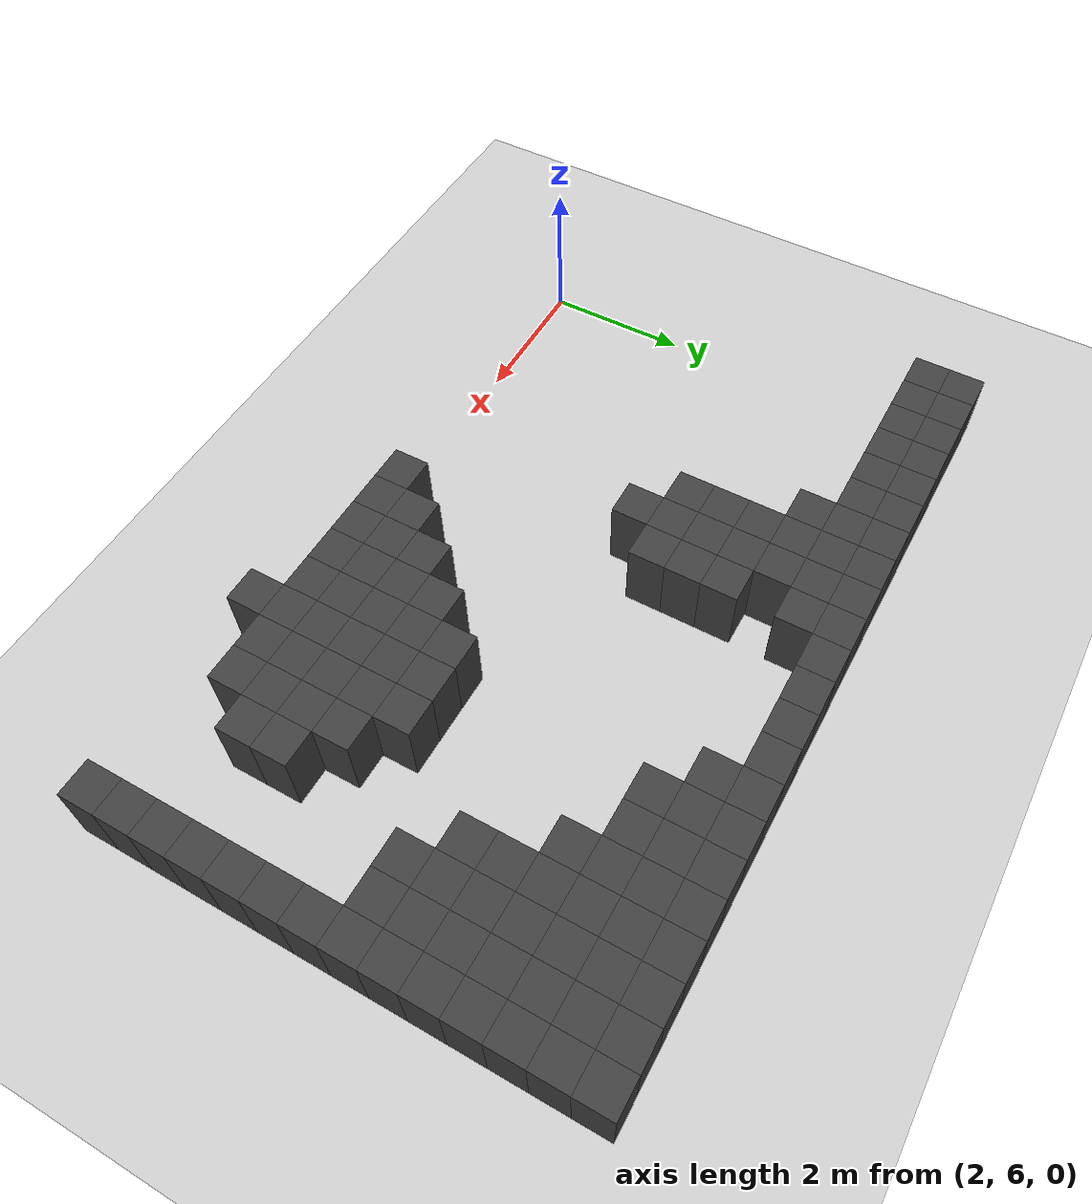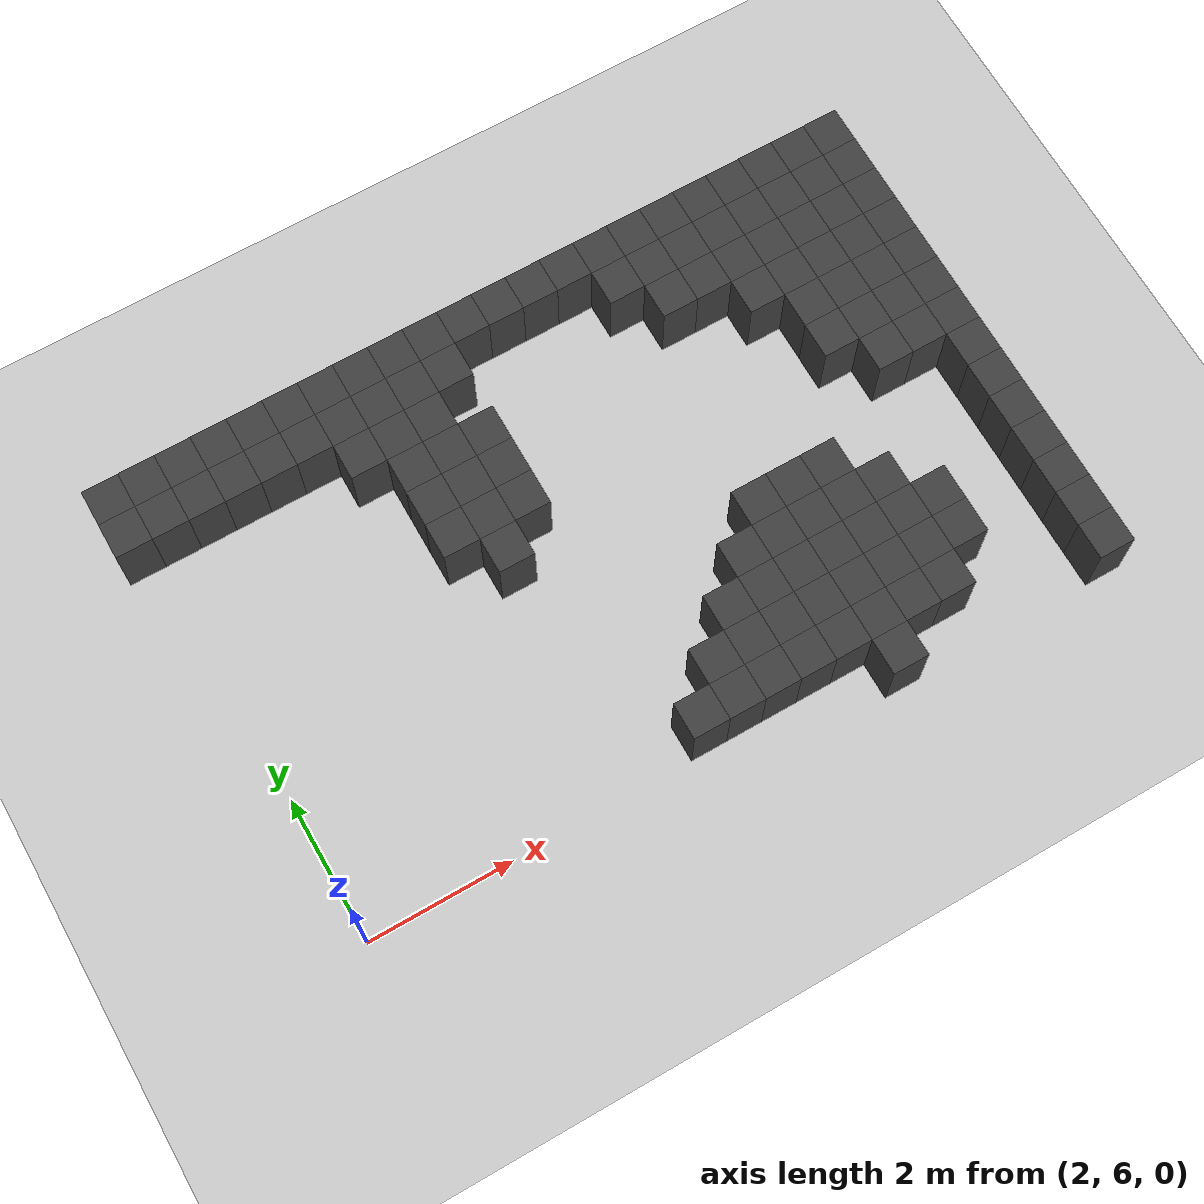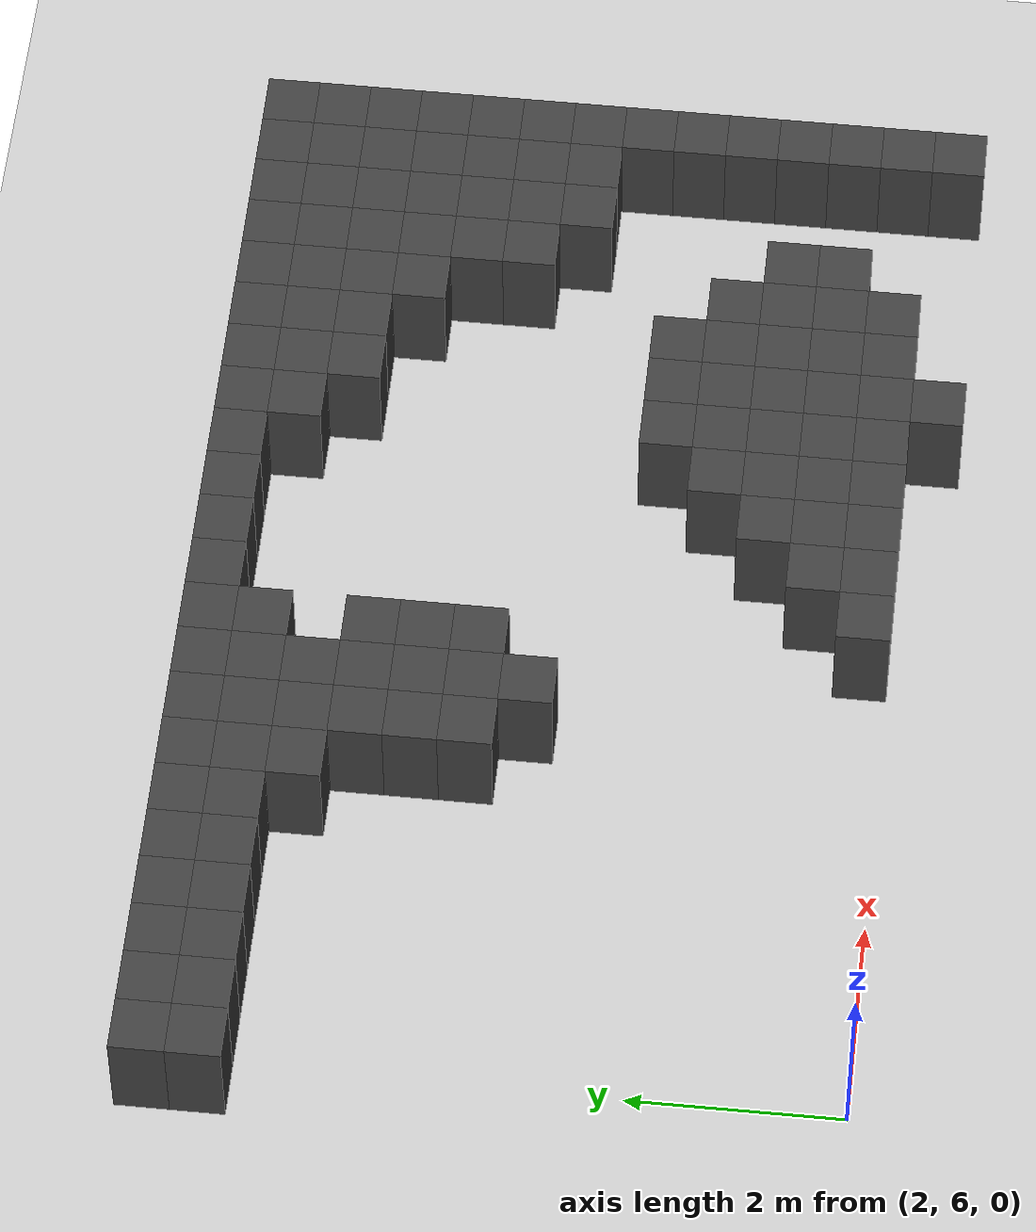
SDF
<sdf version="1.7">
 <world name="map_8829">
  <model name="ground_plane">
   <static>true</static>
   <link name="link">
    <collision name="collision">
     <geometry><plane><normal>0 0 1</normal><size>200 200</size></plane></geometry>
    </collision>
    <visual name="visual">
     <geometry><plane><normal>0 0 1</normal><size>200 200</size></plane></geometry>
     <material><ambient>0.8 0.8 0.8 1</ambient><diffuse>0.8 0.8 0.8 1</diffuse></material>
    </visual>
   </link>
  </model>
  <model name="maze_environment">
   <static>true</static>
   <link name="wall_28">
    <pose>1.750 12.250 0.500 0 0 0</pose>
    <collision name="col"><geometry><box><size>0.5 0.5 1.0</size></box></geometry></collision>
    <visual name="vis">
     <geometry><box><size>0.5 0.5 1.0</size></box></geometry>
     <material><ambient>0.15 0.15 0.15 1</ambient><diffuse>0.25 0.25 0.25 1</diffuse></material>
    </visual>
   </link>
   <link name="wall_29">
    <pose>2.250 12.250 0.500 0 0 0</pose>
    <collision name="col"><geometry><box><size>0.5 0.5 1.0</size></box></geometry></collision>
    <visual name="vis">
     <geometry><box><size>0.5 0.5 1.0</size></box></geometry>
     <material><ambient>0.15 0.15 0.15 1</ambient><diffuse>0.25 0.25 0.25 1</diffuse></material>
    </visual>
   </link>
   <link name="wall_30">
    <pose>2.750 12.250 0.500 0 0 0</pose>
    <collision name="col"><geometry><box><size>0.5 0.5 1.0</size></box></geometry></collision>
    <visual name="vis">
     <geometry><box><size>0.5 0.5 1.0</size></box></geometry>
     <material><ambient>0.15 0.15 0.15 1</ambient><diffuse>0.25 0.25 0.25 1</diffuse></material>
    </visual>
   </link>
   <link name="wall_31">
    <pose>3.250 12.250 0.500 0 0 0</pose>
    <collision name="col"><geometry><box><size>0.5 0.5 1.0</size></box></geometry></collision>
    <visual name="vis">
     <geometry><box><size>0.5 0.5 1.0</size></box></geometry>
     <material><ambient>0.15 0.15 0.15 1</ambient><diffuse>0.25 0.25 0.25 1</diffuse></material>
    </visual>
   </link>
   <link name="wall_32">
    <pose>3.750 12.250 0.500 0 0 0</pose>
    <collision name="col"><geometry><box><size>0.5 0.5 1.0</size></box></geometry></collision>
    <visual name="vis">
     <geometry><box><size>0.5 0.5 1.0</size></box></geometry>
     <material><ambient>0.15 0.15 0.15 1</ambient><diffuse>0.25 0.25 0.25 1</diffuse></material>
    </visual>
   </link>
   <link name="wall_33">
    <pose>4.250 12.250 0.500 0 0 0</pose>
    <collision name="col"><geometry><box><size>0.5 0.5 1.0</size></box></geometry></collision>
    <visual name="vis">
     <geometry><box><size>0.5 0.5 1.0</size></box></geometry>
     <material><ambient>0.15 0.15 0.15 1</ambient><diffuse>0.25 0.25 0.25 1</diffuse></material>
    </visual>
   </link>
   <link name="wall_34">
    <pose>4.750 12.250 0.500 0 0 0</pose>
    <collision name="col"><geometry><box><size>0.5 0.5 1.0</size></box></geometry></collision>
    <visual name="vis">
     <geometry><box><size>0.5 0.5 1.0</size></box></geometry>
     <material><ambient>0.15 0.15 0.15 1</ambient><diffuse>0.25 0.25 0.25 1</diffuse></material>
    </visual>
   </link>
   <link name="wall_35">
    <pose>5.250 12.250 0.500 0 0 0</pose>
    <collision name="col"><geometry><box><size>0.5 0.5 1.0</size></box></geometry></collision>
    <visual name="vis">
     <geometry><box><size>0.5 0.5 1.0</size></box></geometry>
     <material><ambient>0.15 0.15 0.15 1</ambient><diffuse>0.25 0.25 0.25 1</diffuse></material>
    </visual>
   </link>
   <link name="wall_36">
    <pose>5.750 12.250 0.500 0 0 0</pose>
    <collision name="col"><geometry><box><size>0.5 0.5 1.0</size></box></geometry></collision>
    <visual name="vis">
     <geometry><box><size>0.5 0.5 1.0</size></box></geometry>
     <material><ambient>0.15 0.15 0.15 1</ambient><diffuse>0.25 0.25 0.25 1</diffuse></material>
    </visual>
   </link>
   <link name="wall_37">
    <pose>6.250 12.250 0.500 0 0 0</pose>
    <collision name="col"><geometry><box><size>0.5 0.5 1.0</size></box></geometry></collision>
    <visual name="vis">
     <geometry><box><size>0.5 0.5 1.0</size></box></geometry>
     <material><ambient>0.15 0.15 0.15 1</ambient><diffuse>0.25 0.25 0.25 1</diffuse></material>
    </visual>
   </link>
   <link name="wall_38">
    <pose>6.750 12.250 0.500 0 0 0</pose>
    <collision name="col"><geometry><box><size>0.5 0.5 1.0</size></box></geometry></collision>
    <visual name="vis">
     <geometry><box><size>0.5 0.5 1.0</size></box></geometry>
     <material><ambient>0.15 0.15 0.15 1</ambient><diffuse>0.25 0.25 0.25 1</diffuse></material>
    </visual>
   </link>
   <link name="wall_39">
    <pose>7.250 12.250 0.500 0 0 0</pose>
    <collision name="col"><geometry><box><size>0.5 0.5 1.0</size></box></geometry></collision>
    <visual name="vis">
     <geometry><box><size>0.5 0.5 1.0</size></box></geometry>
     <material><ambient>0.15 0.15 0.15 1</ambient><diffuse>0.25 0.25 0.25 1</diffuse></material>
    </visual>
   </link>
   <link name="wall_40">
    <pose>7.750 12.250 0.500 0 0 0</pose>
    <collision name="col"><geometry><box><size>0.5 0.5 1.0</size></box></geometry></collision>
    <visual name="vis">
     <geometry><box><size>0.5 0.5 1.0</size></box></geometry>
     <material><ambient>0.15 0.15 0.15 1</ambient><diffuse>0.25 0.25 0.25 1</diffuse></material>
    </visual>
   </link>
   <link name="wall_41">
    <pose>8.250 12.250 0.500 0 0 0</pose>
    <collision name="col"><geometry><box><size>0.5 0.5 1.0</size></box></geometry></collision>
    <visual name="vis">
     <geometry><box><size>0.5 0.5 1.0</size></box></geometry>
     <material><ambient>0.15 0.15 0.15 1</ambient><diffuse>0.25 0.25 0.25 1</diffuse></material>
    </visual>
   </link>
   <link name="wall_42">
    <pose>8.750 12.250 0.500 0 0 0</pose>
    <collision name="col"><geometry><box><size>0.5 0.5 1.0</size></box></geometry></collision>
    <visual name="vis">
     <geometry><box><size>0.5 0.5 1.0</size></box></geometry>
     <material><ambient>0.15 0.15 0.15 1</ambient><diffuse>0.25 0.25 0.25 1</diffuse></material>
    </visual>
   </link>
   <link name="wall_43">
    <pose>9.250 12.250 0.500 0 0 0</pose>
    <collision name="col"><geometry><box><size>0.5 0.5 1.0</size></box></geometry></collision>
    <visual name="vis">
     <geometry><box><size>0.5 0.5 1.0</size></box></geometry>
     <material><ambient>0.15 0.15 0.15 1</ambient><diffuse>0.25 0.25 0.25 1</diffuse></material>
    </visual>
   </link>
   <link name="wall_44">
    <pose>9.750 12.250 0.500 0 0 0</pose>
    <collision name="col"><geometry><box><size>0.5 0.5 1.0</size></box></geometry></collision>
    <visual name="vis">
     <geometry><box><size>0.5 0.5 1.0</size></box></geometry>
     <material><ambient>0.15 0.15 0.15 1</ambient><diffuse>0.25 0.25 0.25 1</diffuse></material>
    </visual>
   </link>
   <link name="wall_45">
    <pose>10.250 12.250 0.500 0 0 0</pose>
    <collision name="col"><geometry><box><size>0.5 0.5 1.0</size></box></geometry></collision>
    <visual name="vis">
     <geometry><box><size>0.5 0.5 1.0</size></box></geometry>
     <material><ambient>0.15 0.15 0.15 1</ambient><diffuse>0.25 0.25 0.25 1</diffuse></material>
    </visual>
   </link>
   <link name="wall_46">
    <pose>10.750 12.250 0.500 0 0 0</pose>
    <collision name="col"><geometry><box><size>0.5 0.5 1.0</size></box></geometry></collision>
    <visual name="vis">
     <geometry><box><size>0.5 0.5 1.0</size></box></geometry>
     <material><ambient>0.15 0.15 0.15 1</ambient><diffuse>0.25 0.25 0.25 1</diffuse></material>
    </visual>
   </link>
   <link name="wall_47">
    <pose>11.250 12.250 0.500 0 0 0</pose>
    <collision name="col"><geometry><box><size>0.5 0.5 1.0</size></box></geometry></collision>
    <visual name="vis">
     <geometry><box><size>0.5 0.5 1.0</size></box></geometry>
     <material><ambient>0.15 0.15 0.15 1</ambient><diffuse>0.25 0.25 0.25 1</diffuse></material>
    </visual>
   </link>
   <link name="wall_48">
    <pose>11.750 12.250 0.500 0 0 0</pose>
    <collision name="col"><geometry><box><size>0.5 0.5 1.0</size></box></geometry></collision>
    <visual name="vis">
     <geometry><box><size>0.5 0.5 1.0</size></box></geometry>
     <material><ambient>0.15 0.15 0.15 1</ambient><diffuse>0.25 0.25 0.25 1</diffuse></material>
    </visual>
   </link>
   <link name="wall_49">
    <pose>12.250 12.250 0.500 0 0 0</pose>
    <collision name="col"><geometry><box><size>0.5 0.5 1.0</size></box></geometry></collision>
    <visual name="vis">
     <geometry><box><size>0.5 0.5 1.0</size></box></geometry>
     <material><ambient>0.15 0.15 0.15 1</ambient><diffuse>0.25 0.25 0.25 1</diffuse></material>
    </visual>
   </link>
   <link name="wall_67">
    <pose>1.750 11.750 0.500 0 0 0</pose>
    <collision name="col"><geometry><box><size>0.5 0.5 1.0</size></box></geometry></collision>
    <visual name="vis">
     <geometry><box><size>0.5 0.5 1.0</size></box></geometry>
     <material><ambient>0.15 0.15 0.15 1</ambient><diffuse>0.25 0.25 0.25 1</diffuse></material>
    </visual>
   </link>
   <link name="wall_68">
    <pose>2.250 11.750 0.500 0 0 0</pose>
    <collision name="col"><geometry><box><size>0.5 0.5 1.0</size></box></geometry></collision>
    <visual name="vis">
     <geometry><box><size>0.5 0.5 1.0</size></box></geometry>
     <material><ambient>0.15 0.15 0.15 1</ambient><diffuse>0.25 0.25 0.25 1</diffuse></material>
    </visual>
   </link>
   <link name="wall_69">
    <pose>2.750 11.750 0.500 0 0 0</pose>
    <collision name="col"><geometry><box><size>0.5 0.5 1.0</size></box></geometry></collision>
    <visual name="vis">
     <geometry><box><size>0.5 0.5 1.0</size></box></geometry>
     <material><ambient>0.15 0.15 0.15 1</ambient><diffuse>0.25 0.25 0.25 1</diffuse></material>
    </visual>
   </link>
   <link name="wall_70">
    <pose>3.250 11.750 0.500 0 0 0</pose>
    <collision name="col"><geometry><box><size>0.5 0.5 1.0</size></box></geometry></collision>
    <visual name="vis">
     <geometry><box><size>0.5 0.5 1.0</size></box></geometry>
     <material><ambient>0.15 0.15 0.15 1</ambient><diffuse>0.25 0.25 0.25 1</diffuse></material>
    </visual>
   </link>
   <link name="wall_71">
    <pose>3.750 11.750 0.500 0 0 0</pose>
    <collision name="col"><geometry><box><size>0.5 0.5 1.0</size></box></geometry></collision>
    <visual name="vis">
     <geometry><box><size>0.5 0.5 1.0</size></box></geometry>
     <material><ambient>0.15 0.15 0.15 1</ambient><diffuse>0.25 0.25 0.25 1</diffuse></material>
    </visual>
   </link>
   <link name="wall_72">
    <pose>4.250 11.750 0.500 0 0 0</pose>
    <collision name="col"><geometry><box><size>0.5 0.5 1.0</size></box></geometry></collision>
    <visual name="vis">
     <geometry><box><size>0.5 0.5 1.0</size></box></geometry>
     <material><ambient>0.15 0.15 0.15 1</ambient><diffuse>0.25 0.25 0.25 1</diffuse></material>
    </visual>
   </link>
   <link name="wall_73">
    <pose>4.750 11.750 0.500 0 0 0</pose>
    <collision name="col"><geometry><box><size>0.5 0.5 1.0</size></box></geometry></collision>
    <visual name="vis">
     <geometry><box><size>0.5 0.5 1.0</size></box></geometry>
     <material><ambient>0.15 0.15 0.15 1</ambient><diffuse>0.25 0.25 0.25 1</diffuse></material>
    </visual>
   </link>
   <link name="wall_74">
    <pose>5.250 11.750 0.500 0 0 0</pose>
    <collision name="col"><geometry><box><size>0.5 0.5 1.0</size></box></geometry></collision>
    <visual name="vis">
     <geometry><box><size>0.5 0.5 1.0</size></box></geometry>
     <material><ambient>0.15 0.15 0.15 1</ambient><diffuse>0.25 0.25 0.25 1</diffuse></material>
    </visual>
   </link>
   <link name="wall_75">
    <pose>5.750 11.750 0.500 0 0 0</pose>
    <collision name="col"><geometry><box><size>0.5 0.5 1.0</size></box></geometry></collision>
    <visual name="vis">
     <geometry><box><size>0.5 0.5 1.0</size></box></geometry>
     <material><ambient>0.15 0.15 0.15 1</ambient><diffuse>0.25 0.25 0.25 1</diffuse></material>
    </visual>
   </link>
   <link name="wall_76">
    <pose>6.250 11.750 0.500 0 0 0</pose>
    <collision name="col"><geometry><box><size>0.5 0.5 1.0</size></box></geometry></collision>
    <visual name="vis">
     <geometry><box><size>0.5 0.5 1.0</size></box></geometry>
     <material><ambient>0.15 0.15 0.15 1</ambient><diffuse>0.25 0.25 0.25 1</diffuse></material>
    </visual>
   </link>
   <link name="wall_77">
    <pose>8.750 11.750 0.500 0 0 0</pose>
    <collision name="col"><geometry><box><size>0.5 0.5 1.0</size></box></geometry></collision>
    <visual name="vis">
     <geometry><box><size>0.5 0.5 1.0</size></box></geometry>
     <material><ambient>0.15 0.15 0.15 1</ambient><diffuse>0.25 0.25 0.25 1</diffuse></material>
    </visual>
   </link>
   <link name="wall_78">
    <pose>9.250 11.750 0.500 0 0 0</pose>
    <collision name="col"><geometry><box><size>0.5 0.5 1.0</size></box></geometry></collision>
    <visual name="vis">
     <geometry><box><size>0.5 0.5 1.0</size></box></geometry>
     <material><ambient>0.15 0.15 0.15 1</ambient><diffuse>0.25 0.25 0.25 1</diffuse></material>
    </visual>
   </link>
   <link name="wall_79">
    <pose>9.750 11.750 0.500 0 0 0</pose>
    <collision name="col"><geometry><box><size>0.5 0.5 1.0</size></box></geometry></collision>
    <visual name="vis">
     <geometry><box><size>0.5 0.5 1.0</size></box></geometry>
     <material><ambient>0.15 0.15 0.15 1</ambient><diffuse>0.25 0.25 0.25 1</diffuse></material>
    </visual>
   </link>
   <link name="wall_80">
    <pose>10.250 11.750 0.500 0 0 0</pose>
    <collision name="col"><geometry><box><size>0.5 0.5 1.0</size></box></geometry></collision>
    <visual name="vis">
     <geometry><box><size>0.5 0.5 1.0</size></box></geometry>
     <material><ambient>0.15 0.15 0.15 1</ambient><diffuse>0.25 0.25 0.25 1</diffuse></material>
    </visual>
   </link>
   <link name="wall_81">
    <pose>10.750 11.750 0.500 0 0 0</pose>
    <collision name="col"><geometry><box><size>0.5 0.5 1.0</size></box></geometry></collision>
    <visual name="vis">
     <geometry><box><size>0.5 0.5 1.0</size></box></geometry>
     <material><ambient>0.15 0.15 0.15 1</ambient><diffuse>0.25 0.25 0.25 1</diffuse></material>
    </visual>
   </link>
   <link name="wall_82">
    <pose>11.250 11.750 0.500 0 0 0</pose>
    <collision name="col"><geometry><box><size>0.5 0.5 1.0</size></box></geometry></collision>
    <visual name="vis">
     <geometry><box><size>0.5 0.5 1.0</size></box></geometry>
     <material><ambient>0.15 0.15 0.15 1</ambient><diffuse>0.25 0.25 0.25 1</diffuse></material>
    </visual>
   </link>
   <link name="wall_83">
    <pose>11.750 11.750 0.500 0 0 0</pose>
    <collision name="col"><geometry><box><size>0.5 0.5 1.0</size></box></geometry></collision>
    <visual name="vis">
     <geometry><box><size>0.5 0.5 1.0</size></box></geometry>
     <material><ambient>0.15 0.15 0.15 1</ambient><diffuse>0.25 0.25 0.25 1</diffuse></material>
    </visual>
   </link>
   <link name="wall_84">
    <pose>12.250 11.750 0.500 0 0 0</pose>
    <collision name="col"><geometry><box><size>0.5 0.5 1.0</size></box></geometry></collision>
    <visual name="vis">
     <geometry><box><size>0.5 0.5 1.0</size></box></geometry>
     <material><ambient>0.15 0.15 0.15 1</ambient><diffuse>0.25 0.25 0.25 1</diffuse></material>
    </visual>
   </link>
   <link name="wall_95">
    <pose>4.750 11.250 0.500 0 0 0</pose>
    <collision name="col"><geometry><box><size>0.5 0.5 1.0</size></box></geometry></collision>
    <visual name="vis">
     <geometry><box><size>0.5 0.5 1.0</size></box></geometry>
     <material><ambient>0.15 0.15 0.15 1</ambient><diffuse>0.25 0.25 0.25 1</diffuse></material>
    </visual>
   </link>
   <link name="wall_96">
    <pose>5.250 11.250 0.500 0 0 0</pose>
    <collision name="col"><geometry><box><size>0.5 0.5 1.0</size></box></geometry></collision>
    <visual name="vis">
     <geometry><box><size>0.5 0.5 1.0</size></box></geometry>
     <material><ambient>0.15 0.15 0.15 1</ambient><diffuse>0.25 0.25 0.25 1</diffuse></material>
    </visual>
   </link>
   <link name="wall_97">
    <pose>5.750 11.250 0.500 0 0 0</pose>
    <collision name="col"><geometry><box><size>0.5 0.5 1.0</size></box></geometry></collision>
    <visual name="vis">
     <geometry><box><size>0.5 0.5 1.0</size></box></geometry>
     <material><ambient>0.15 0.15 0.15 1</ambient><diffuse>0.25 0.25 0.25 1</diffuse></material>
    </visual>
   </link>
   <link name="wall_98">
    <pose>9.250 11.250 0.500 0 0 0</pose>
    <collision name="col"><geometry><box><size>0.5 0.5 1.0</size></box></geometry></collision>
    <visual name="vis">
     <geometry><box><size>0.5 0.5 1.0</size></box></geometry>
     <material><ambient>0.15 0.15 0.15 1</ambient><diffuse>0.25 0.25 0.25 1</diffuse></material>
    </visual>
   </link>
   <link name="wall_99">
    <pose>9.750 11.250 0.500 0 0 0</pose>
    <collision name="col"><geometry><box><size>0.5 0.5 1.0</size></box></geometry></collision>
    <visual name="vis">
     <geometry><box><size>0.5 0.5 1.0</size></box></geometry>
     <material><ambient>0.15 0.15 0.15 1</ambient><diffuse>0.25 0.25 0.25 1</diffuse></material>
    </visual>
   </link>
   <link name="wall_100">
    <pose>10.250 11.250 0.500 0 0 0</pose>
    <collision name="col"><geometry><box><size>0.5 0.5 1.0</size></box></geometry></collision>
    <visual name="vis">
     <geometry><box><size>0.5 0.5 1.0</size></box></geometry>
     <material><ambient>0.15 0.15 0.15 1</ambient><diffuse>0.25 0.25 0.25 1</diffuse></material>
    </visual>
   </link>
   <link name="wall_101">
    <pose>10.750 11.250 0.500 0 0 0</pose>
    <collision name="col"><geometry><box><size>0.5 0.5 1.0</size></box></geometry></collision>
    <visual name="vis">
     <geometry><box><size>0.5 0.5 1.0</size></box></geometry>
     <material><ambient>0.15 0.15 0.15 1</ambient><diffuse>0.25 0.25 0.25 1</diffuse></material>
    </visual>
   </link>
   <link name="wall_102">
    <pose>11.250 11.250 0.500 0 0 0</pose>
    <collision name="col"><geometry><box><size>0.5 0.5 1.0</size></box></geometry></collision>
    <visual name="vis">
     <geometry><box><size>0.5 0.5 1.0</size></box></geometry>
     <material><ambient>0.15 0.15 0.15 1</ambient><diffuse>0.25 0.25 0.25 1</diffuse></material>
    </visual>
   </link>
   <link name="wall_103">
    <pose>11.750 11.250 0.500 0 0 0</pose>
    <collision name="col"><geometry><box><size>0.5 0.5 1.0</size></box></geometry></collision>
    <visual name="vis">
     <geometry><box><size>0.5 0.5 1.0</size></box></geometry>
     <material><ambient>0.15 0.15 0.15 1</ambient><diffuse>0.25 0.25 0.25 1</diffuse></material>
    </visual>
   </link>
   <link name="wall_104">
    <pose>12.250 11.250 0.500 0 0 0</pose>
    <collision name="col"><geometry><box><size>0.5 0.5 1.0</size></box></geometry></collision>
    <visual name="vis">
     <geometry><box><size>0.5 0.5 1.0</size></box></geometry>
     <material><ambient>0.15 0.15 0.15 1</ambient><diffuse>0.25 0.25 0.25 1</diffuse></material>
    </visual>
   </link>
   <link name="wall_114">
    <pose>5.250 10.750 0.500 0 0 0</pose>
    <collision name="col"><geometry><box><size>0.5 0.5 1.0</size></box></geometry></collision>
    <visual name="vis">
     <geometry><box><size>0.5 0.5 1.0</size></box></geometry>
     <material><ambient>0.15 0.15 0.15 1</ambient><diffuse>0.25 0.25 0.25 1</diffuse></material>
    </visual>
   </link>
   <link name="wall_115">
    <pose>5.750 10.750 0.500 0 0 0</pose>
    <collision name="col"><geometry><box><size>0.5 0.5 1.0</size></box></geometry></collision>
    <visual name="vis">
     <geometry><box><size>0.5 0.5 1.0</size></box></geometry>
     <material><ambient>0.15 0.15 0.15 1</ambient><diffuse>0.25 0.25 0.25 1</diffuse></material>
    </visual>
   </link>
   <link name="wall_116">
    <pose>6.250 10.750 0.500 0 0 0</pose>
    <collision name="col"><geometry><box><size>0.5 0.5 1.0</size></box></geometry></collision>
    <visual name="vis">
     <geometry><box><size>0.5 0.5 1.0</size></box></geometry>
     <material><ambient>0.15 0.15 0.15 1</ambient><diffuse>0.25 0.25 0.25 1</diffuse></material>
    </visual>
   </link>
   <link name="wall_117">
    <pose>10.250 10.750 0.500 0 0 0</pose>
    <collision name="col"><geometry><box><size>0.5 0.5 1.0</size></box></geometry></collision>
    <visual name="vis">
     <geometry><box><size>0.5 0.5 1.0</size></box></geometry>
     <material><ambient>0.15 0.15 0.15 1</ambient><diffuse>0.25 0.25 0.25 1</diffuse></material>
    </visual>
   </link>
   <link name="wall_118">
    <pose>10.750 10.750 0.500 0 0 0</pose>
    <collision name="col"><geometry><box><size>0.5 0.5 1.0</size></box></geometry></collision>
    <visual name="vis">
     <geometry><box><size>0.5 0.5 1.0</size></box></geometry>
     <material><ambient>0.15 0.15 0.15 1</ambient><diffuse>0.25 0.25 0.25 1</diffuse></material>
    </visual>
   </link>
   <link name="wall_119">
    <pose>11.250 10.750 0.500 0 0 0</pose>
    <collision name="col"><geometry><box><size>0.5 0.5 1.0</size></box></geometry></collision>
    <visual name="vis">
     <geometry><box><size>0.5 0.5 1.0</size></box></geometry>
     <material><ambient>0.15 0.15 0.15 1</ambient><diffuse>0.25 0.25 0.25 1</diffuse></material>
    </visual>
   </link>
   <link name="wall_120">
    <pose>11.750 10.750 0.500 0 0 0</pose>
    <collision name="col"><geometry><box><size>0.5 0.5 1.0</size></box></geometry></collision>
    <visual name="vis">
     <geometry><box><size>0.5 0.5 1.0</size></box></geometry>
     <material><ambient>0.15 0.15 0.15 1</ambient><diffuse>0.25 0.25 0.25 1</diffuse></material>
    </visual>
   </link>
   <link name="wall_121">
    <pose>12.250 10.750 0.500 0 0 0</pose>
    <collision name="col"><geometry><box><size>0.5 0.5 1.0</size></box></geometry></collision>
    <visual name="vis">
     <geometry><box><size>0.5 0.5 1.0</size></box></geometry>
     <material><ambient>0.15 0.15 0.15 1</ambient><diffuse>0.25 0.25 0.25 1</diffuse></material>
    </visual>
   </link>
   <link name="wall_133">
    <pose>5.250 10.250 0.500 0 0 0</pose>
    <collision name="col"><geometry><box><size>0.5 0.5 1.0</size></box></geometry></collision>
    <visual name="vis">
     <geometry><box><size>0.5 0.5 1.0</size></box></geometry>
     <material><ambient>0.15 0.15 0.15 1</ambient><diffuse>0.25 0.25 0.25 1</diffuse></material>
    </visual>
   </link>
   <link name="wall_134">
    <pose>5.750 10.250 0.500 0 0 0</pose>
    <collision name="col"><geometry><box><size>0.5 0.5 1.0</size></box></geometry></collision>
    <visual name="vis">
     <geometry><box><size>0.5 0.5 1.0</size></box></geometry>
     <material><ambient>0.15 0.15 0.15 1</ambient><diffuse>0.25 0.25 0.25 1</diffuse></material>
    </visual>
   </link>
   <link name="wall_135">
    <pose>6.250 10.250 0.500 0 0 0</pose>
    <collision name="col"><geometry><box><size>0.5 0.5 1.0</size></box></geometry></collision>
    <visual name="vis">
     <geometry><box><size>0.5 0.5 1.0</size></box></geometry>
     <material><ambient>0.15 0.15 0.15 1</ambient><diffuse>0.25 0.25 0.25 1</diffuse></material>
    </visual>
   </link>
   <link name="wall_136">
    <pose>10.750 10.250 0.500 0 0 0</pose>
    <collision name="col"><geometry><box><size>0.5 0.5 1.0</size></box></geometry></collision>
    <visual name="vis">
     <geometry><box><size>0.5 0.5 1.0</size></box></geometry>
     <material><ambient>0.15 0.15 0.15 1</ambient><diffuse>0.25 0.25 0.25 1</diffuse></material>
    </visual>
   </link>
   <link name="wall_137">
    <pose>11.250 10.250 0.500 0 0 0</pose>
    <collision name="col"><geometry><box><size>0.5 0.5 1.0</size></box></geometry></collision>
    <visual name="vis">
     <geometry><box><size>0.5 0.5 1.0</size></box></geometry>
     <material><ambient>0.15 0.15 0.15 1</ambient><diffuse>0.25 0.25 0.25 1</diffuse></material>
    </visual>
   </link>
   <link name="wall_138">
    <pose>11.750 10.250 0.500 0 0 0</pose>
    <collision name="col"><geometry><box><size>0.5 0.5 1.0</size></box></geometry></collision>
    <visual name="vis">
     <geometry><box><size>0.5 0.5 1.0</size></box></geometry>
     <material><ambient>0.15 0.15 0.15 1</ambient><diffuse>0.25 0.25 0.25 1</diffuse></material>
    </visual>
   </link>
   <link name="wall_139">
    <pose>12.250 10.250 0.500 0 0 0</pose>
    <collision name="col"><geometry><box><size>0.5 0.5 1.0</size></box></geometry></collision>
    <visual name="vis">
     <geometry><box><size>0.5 0.5 1.0</size></box></geometry>
     <material><ambient>0.15 0.15 0.15 1</ambient><diffuse>0.25 0.25 0.25 1</diffuse></material>
    </visual>
   </link>
   <link name="wall_151">
    <pose>5.250 9.750 0.500 0 0 0</pose>
    <collision name="col"><geometry><box><size>0.5 0.5 1.0</size></box></geometry></collision>
    <visual name="vis">
     <geometry><box><size>0.5 0.5 1.0</size></box></geometry>
     <material><ambient>0.15 0.15 0.15 1</ambient><diffuse>0.25 0.25 0.25 1</diffuse></material>
    </visual>
   </link>
   <link name="wall_152">
    <pose>5.750 9.750 0.500 0 0 0</pose>
    <collision name="col"><geometry><box><size>0.5 0.5 1.0</size></box></geometry></collision>
    <visual name="vis">
     <geometry><box><size>0.5 0.5 1.0</size></box></geometry>
     <material><ambient>0.15 0.15 0.15 1</ambient><diffuse>0.25 0.25 0.25 1</diffuse></material>
    </visual>
   </link>
   <link name="wall_153">
    <pose>6.250 9.750 0.500 0 0 0</pose>
    <collision name="col"><geometry><box><size>0.5 0.5 1.0</size></box></geometry></collision>
    <visual name="vis">
     <geometry><box><size>0.5 0.5 1.0</size></box></geometry>
     <material><ambient>0.15 0.15 0.15 1</ambient><diffuse>0.25 0.25 0.25 1</diffuse></material>
    </visual>
   </link>
   <link name="wall_154">
    <pose>10.750 9.750 0.500 0 0 0</pose>
    <collision name="col"><geometry><box><size>0.5 0.5 1.0</size></box></geometry></collision>
    <visual name="vis">
     <geometry><box><size>0.5 0.5 1.0</size></box></geometry>
     <material><ambient>0.15 0.15 0.15 1</ambient><diffuse>0.25 0.25 0.25 1</diffuse></material>
    </visual>
   </link>
   <link name="wall_155">
    <pose>11.250 9.750 0.500 0 0 0</pose>
    <collision name="col"><geometry><box><size>0.5 0.5 1.0</size></box></geometry></collision>
    <visual name="vis">
     <geometry><box><size>0.5 0.5 1.0</size></box></geometry>
     <material><ambient>0.15 0.15 0.15 1</ambient><diffuse>0.25 0.25 0.25 1</diffuse></material>
    </visual>
   </link>
   <link name="wall_156">
    <pose>11.750 9.750 0.500 0 0 0</pose>
    <collision name="col"><geometry><box><size>0.5 0.5 1.0</size></box></geometry></collision>
    <visual name="vis">
     <geometry><box><size>0.5 0.5 1.0</size></box></geometry>
     <material><ambient>0.15 0.15 0.15 1</ambient><diffuse>0.25 0.25 0.25 1</diffuse></material>
    </visual>
   </link>
   <link name="wall_157">
    <pose>12.250 9.750 0.500 0 0 0</pose>
    <collision name="col"><geometry><box><size>0.5 0.5 1.0</size></box></geometry></collision>
    <visual name="vis">
     <geometry><box><size>0.5 0.5 1.0</size></box></geometry>
     <material><ambient>0.15 0.15 0.15 1</ambient><diffuse>0.25 0.25 0.25 1</diffuse></material>
    </visual>
   </link>
   <link name="wall_162">
    <pose>5.750 9.250 0.500 0 0 0</pose>
    <collision name="col"><geometry><box><size>0.5 0.5 1.0</size></box></geometry></collision>
    <visual name="vis">
     <geometry><box><size>0.5 0.5 1.0</size></box></geometry>
     <material><ambient>0.15 0.15 0.15 1</ambient><diffuse>0.25 0.25 0.25 1</diffuse></material>
    </visual>
   </link>
   <link name="wall_163">
    <pose>11.250 9.250 0.500 0 0 0</pose>
    <collision name="col"><geometry><box><size>0.5 0.5 1.0</size></box></geometry></collision>
    <visual name="vis">
     <geometry><box><size>0.5 0.5 1.0</size></box></geometry>
     <material><ambient>0.15 0.15 0.15 1</ambient><diffuse>0.25 0.25 0.25 1</diffuse></material>
    </visual>
   </link>
   <link name="wall_164">
    <pose>11.750 9.250 0.500 0 0 0</pose>
    <collision name="col"><geometry><box><size>0.5 0.5 1.0</size></box></geometry></collision>
    <visual name="vis">
     <geometry><box><size>0.5 0.5 1.0</size></box></geometry>
     <material><ambient>0.15 0.15 0.15 1</ambient><diffuse>0.25 0.25 0.25 1</diffuse></material>
    </visual>
   </link>
   <link name="wall_165">
    <pose>12.250 9.250 0.500 0 0 0</pose>
    <collision name="col"><geometry><box><size>0.5 0.5 1.0</size></box></geometry></collision>
    <visual name="vis">
     <geometry><box><size>0.5 0.5 1.0</size></box></geometry>
     <material><ambient>0.15 0.15 0.15 1</ambient><diffuse>0.25 0.25 0.25 1</diffuse></material>
    </visual>
   </link>
   <link name="wall_169">
    <pose>12.250 8.750 0.500 0 0 0</pose>
    <collision name="col"><geometry><box><size>0.5 0.5 1.0</size></box></geometry></collision>
    <visual name="vis">
     <geometry><box><size>0.5 0.5 1.0</size></box></geometry>
     <material><ambient>0.15 0.15 0.15 1</ambient><diffuse>0.25 0.25 0.25 1</diffuse></material>
    </visual>
   </link>
   <link name="wall_172">
    <pose>8.750 8.250 0.500 0 0 0</pose>
    <collision name="col"><geometry><box><size>0.5 0.5 1.0</size></box></geometry></collision>
    <visual name="vis">
     <geometry><box><size>0.5 0.5 1.0</size></box></geometry>
     <material><ambient>0.15 0.15 0.15 1</ambient><diffuse>0.25 0.25 0.25 1</diffuse></material>
    </visual>
   </link>
   <link name="wall_173">
    <pose>9.250 8.250 0.500 0 0 0</pose>
    <collision name="col"><geometry><box><size>0.5 0.5 1.0</size></box></geometry></collision>
    <visual name="vis">
     <geometry><box><size>0.5 0.5 1.0</size></box></geometry>
     <material><ambient>0.15 0.15 0.15 1</ambient><diffuse>0.25 0.25 0.25 1</diffuse></material>
    </visual>
   </link>
   <link name="wall_174">
    <pose>9.750 8.250 0.500 0 0 0</pose>
    <collision name="col"><geometry><box><size>0.5 0.5 1.0</size></box></geometry></collision>
    <visual name="vis">
     <geometry><box><size>0.5 0.5 1.0</size></box></geometry>
     <material><ambient>0.15 0.15 0.15 1</ambient><diffuse>0.25 0.25 0.25 1</diffuse></material>
    </visual>
   </link>
   <link name="wall_175">
    <pose>12.250 8.250 0.500 0 0 0</pose>
    <collision name="col"><geometry><box><size>0.5 0.5 1.0</size></box></geometry></collision>
    <visual name="vis">
     <geometry><box><size>0.5 0.5 1.0</size></box></geometry>
     <material><ambient>0.15 0.15 0.15 1</ambient><diffuse>0.25 0.25 0.25 1</diffuse></material>
    </visual>
   </link>
   <link name="wall_177">
    <pose>8.250 7.750 0.500 0 0 0</pose>
    <collision name="col"><geometry><box><size>0.5 0.5 1.0</size></box></geometry></collision>
    <visual name="vis">
     <geometry><box><size>0.5 0.5 1.0</size></box></geometry>
     <material><ambient>0.15 0.15 0.15 1</ambient><diffuse>0.25 0.25 0.25 1</diffuse></material>
    </visual>
   </link>
   <link name="wall_178">
    <pose>8.750 7.750 0.500 0 0 0</pose>
    <collision name="col"><geometry><box><size>0.5 0.5 1.0</size></box></geometry></collision>
    <visual name="vis">
     <geometry><box><size>0.5 0.5 1.0</size></box></geometry>
     <material><ambient>0.15 0.15 0.15 1</ambient><diffuse>0.25 0.25 0.25 1</diffuse></material>
    </visual>
   </link>
   <link name="wall_179">
    <pose>9.250 7.750 0.500 0 0 0</pose>
    <collision name="col"><geometry><box><size>0.5 0.5 1.0</size></box></geometry></collision>
    <visual name="vis">
     <geometry><box><size>0.5 0.5 1.0</size></box></geometry>
     <material><ambient>0.15 0.15 0.15 1</ambient><diffuse>0.25 0.25 0.25 1</diffuse></material>
    </visual>
   </link>
   <link name="wall_180">
    <pose>9.750 7.750 0.500 0 0 0</pose>
    <collision name="col"><geometry><box><size>0.5 0.5 1.0</size></box></geometry></collision>
    <visual name="vis">
     <geometry><box><size>0.5 0.5 1.0</size></box></geometry>
     <material><ambient>0.15 0.15 0.15 1</ambient><diffuse>0.25 0.25 0.25 1</diffuse></material>
    </visual>
   </link>
   <link name="wall_181">
    <pose>10.250 7.750 0.500 0 0 0</pose>
    <collision name="col"><geometry><box><size>0.5 0.5 1.0</size></box></geometry></collision>
    <visual name="vis">
     <geometry><box><size>0.5 0.5 1.0</size></box></geometry>
     <material><ambient>0.15 0.15 0.15 1</ambient><diffuse>0.25 0.25 0.25 1</diffuse></material>
    </visual>
   </link>
   <link name="wall_182">
    <pose>12.250 7.750 0.500 0 0 0</pose>
    <collision name="col"><geometry><box><size>0.5 0.5 1.0</size></box></geometry></collision>
    <visual name="vis">
     <geometry><box><size>0.5 0.5 1.0</size></box></geometry>
     <material><ambient>0.15 0.15 0.15 1</ambient><diffuse>0.25 0.25 0.25 1</diffuse></material>
    </visual>
   </link>
   <link name="wall_186">
    <pose>7.750 7.250 0.500 0 0 0</pose>
    <collision name="col"><geometry><box><size>0.5 0.5 1.0</size></box></geometry></collision>
    <visual name="vis">
     <geometry><box><size>0.5 0.5 1.0</size></box></geometry>
     <material><ambient>0.15 0.15 0.15 1</ambient><diffuse>0.25 0.25 0.25 1</diffuse></material>
    </visual>
   </link>
   <link name="wall_187">
    <pose>8.250 7.250 0.500 0 0 0</pose>
    <collision name="col"><geometry><box><size>0.5 0.5 1.0</size></box></geometry></collision>
    <visual name="vis">
     <geometry><box><size>0.5 0.5 1.0</size></box></geometry>
     <material><ambient>0.15 0.15 0.15 1</ambient><diffuse>0.25 0.25 0.25 1</diffuse></material>
    </visual>
   </link>
   <link name="wall_188">
    <pose>8.750 7.250 0.500 0 0 0</pose>
    <collision name="col"><geometry><box><size>0.5 0.5 1.0</size></box></geometry></collision>
    <visual name="vis">
     <geometry><box><size>0.5 0.5 1.0</size></box></geometry>
     <material><ambient>0.15 0.15 0.15 1</ambient><diffuse>0.25 0.25 0.25 1</diffuse></material>
    </visual>
   </link>
   <link name="wall_189">
    <pose>9.250 7.250 0.500 0 0 0</pose>
    <collision name="col"><geometry><box><size>0.5 0.5 1.0</size></box></geometry></collision>
    <visual name="vis">
     <geometry><box><size>0.5 0.5 1.0</size></box></geometry>
     <material><ambient>0.15 0.15 0.15 1</ambient><diffuse>0.25 0.25 0.25 1</diffuse></material>
    </visual>
   </link>
   <link name="wall_190">
    <pose>9.750 7.250 0.500 0 0 0</pose>
    <collision name="col"><geometry><box><size>0.5 0.5 1.0</size></box></geometry></collision>
    <visual name="vis">
     <geometry><box><size>0.5 0.5 1.0</size></box></geometry>
     <material><ambient>0.15 0.15 0.15 1</ambient><diffuse>0.25 0.25 0.25 1</diffuse></material>
    </visual>
   </link>
   <link name="wall_191">
    <pose>10.250 7.250 0.500 0 0 0</pose>
    <collision name="col"><geometry><box><size>0.5 0.5 1.0</size></box></geometry></collision>
    <visual name="vis">
     <geometry><box><size>0.5 0.5 1.0</size></box></geometry>
     <material><ambient>0.15 0.15 0.15 1</ambient><diffuse>0.25 0.25 0.25 1</diffuse></material>
    </visual>
   </link>
   <link name="wall_192">
    <pose>10.750 7.250 0.500 0 0 0</pose>
    <collision name="col"><geometry><box><size>0.5 0.5 1.0</size></box></geometry></collision>
    <visual name="vis">
     <geometry><box><size>0.5 0.5 1.0</size></box></geometry>
     <material><ambient>0.15 0.15 0.15 1</ambient><diffuse>0.25 0.25 0.25 1</diffuse></material>
    </visual>
   </link>
   <link name="wall_193">
    <pose>12.250 7.250 0.500 0 0 0</pose>
    <collision name="col"><geometry><box><size>0.5 0.5 1.0</size></box></geometry></collision>
    <visual name="vis">
     <geometry><box><size>0.5 0.5 1.0</size></box></geometry>
     <material><ambient>0.15 0.15 0.15 1</ambient><diffuse>0.25 0.25 0.25 1</diffuse></material>
    </visual>
   </link>
   <link name="wall_198">
    <pose>7.250 6.750 0.500 0 0 0</pose>
    <collision name="col"><geometry><box><size>0.5 0.5 1.0</size></box></geometry></collision>
    <visual name="vis">
     <geometry><box><size>0.5 0.5 1.0</size></box></geometry>
     <material><ambient>0.15 0.15 0.15 1</ambient><diffuse>0.25 0.25 0.25 1</diffuse></material>
    </visual>
   </link>
   <link name="wall_199">
    <pose>7.750 6.750 0.500 0 0 0</pose>
    <collision name="col"><geometry><box><size>0.5 0.5 1.0</size></box></geometry></collision>
    <visual name="vis">
     <geometry><box><size>0.5 0.5 1.0</size></box></geometry>
     <material><ambient>0.15 0.15 0.15 1</ambient><diffuse>0.25 0.25 0.25 1</diffuse></material>
    </visual>
   </link>
   <link name="wall_200">
    <pose>8.250 6.750 0.500 0 0 0</pose>
    <collision name="col"><geometry><box><size>0.5 0.5 1.0</size></box></geometry></collision>
    <visual name="vis">
     <geometry><box><size>0.5 0.5 1.0</size></box></geometry>
     <material><ambient>0.15 0.15 0.15 1</ambient><diffuse>0.25 0.25 0.25 1</diffuse></material>
    </visual>
   </link>
   <link name="wall_201">
    <pose>8.750 6.750 0.500 0 0 0</pose>
    <collision name="col"><geometry><box><size>0.5 0.5 1.0</size></box></geometry></collision>
    <visual name="vis">
     <geometry><box><size>0.5 0.5 1.0</size></box></geometry>
     <material><ambient>0.15 0.15 0.15 1</ambient><diffuse>0.25 0.25 0.25 1</diffuse></material>
    </visual>
   </link>
   <link name="wall_202">
    <pose>9.250 6.750 0.500 0 0 0</pose>
    <collision name="col"><geometry><box><size>0.5 0.5 1.0</size></box></geometry></collision>
    <visual name="vis">
     <geometry><box><size>0.5 0.5 1.0</size></box></geometry>
     <material><ambient>0.15 0.15 0.15 1</ambient><diffuse>0.25 0.25 0.25 1</diffuse></material>
    </visual>
   </link>
   <link name="wall_203">
    <pose>9.750 6.750 0.500 0 0 0</pose>
    <collision name="col"><geometry><box><size>0.5 0.5 1.0</size></box></geometry></collision>
    <visual name="vis">
     <geometry><box><size>0.5 0.5 1.0</size></box></geometry>
     <material><ambient>0.15 0.15 0.15 1</ambient><diffuse>0.25 0.25 0.25 1</diffuse></material>
    </visual>
   </link>
   <link name="wall_204">
    <pose>10.250 6.750 0.500 0 0 0</pose>
    <collision name="col"><geometry><box><size>0.5 0.5 1.0</size></box></geometry></collision>
    <visual name="vis">
     <geometry><box><size>0.5 0.5 1.0</size></box></geometry>
     <material><ambient>0.15 0.15 0.15 1</ambient><diffuse>0.25 0.25 0.25 1</diffuse></material>
    </visual>
   </link>
   <link name="wall_205">
    <pose>10.750 6.750 0.500 0 0 0</pose>
    <collision name="col"><geometry><box><size>0.5 0.5 1.0</size></box></geometry></collision>
    <visual name="vis">
     <geometry><box><size>0.5 0.5 1.0</size></box></geometry>
     <material><ambient>0.15 0.15 0.15 1</ambient><diffuse>0.25 0.25 0.25 1</diffuse></material>
    </visual>
   </link>
   <link name="wall_206">
    <pose>12.250 6.750 0.500 0 0 0</pose>
    <collision name="col"><geometry><box><size>0.5 0.5 1.0</size></box></geometry></collision>
    <visual name="vis">
     <geometry><box><size>0.5 0.5 1.0</size></box></geometry>
     <material><ambient>0.15 0.15 0.15 1</ambient><diffuse>0.25 0.25 0.25 1</diffuse></material>
    </visual>
   </link>
   <link name="wall_213">
    <pose>6.750 6.250 0.500 0 0 0</pose>
    <collision name="col"><geometry><box><size>0.5 0.5 1.0</size></box></geometry></collision>
    <visual name="vis">
     <geometry><box><size>0.5 0.5 1.0</size></box></geometry>
     <material><ambient>0.15 0.15 0.15 1</ambient><diffuse>0.25 0.25 0.25 1</diffuse></material>
    </visual>
   </link>
   <link name="wall_214">
    <pose>7.250 6.250 0.500 0 0 0</pose>
    <collision name="col"><geometry><box><size>0.5 0.5 1.0</size></box></geometry></collision>
    <visual name="vis">
     <geometry><box><size>0.5 0.5 1.0</size></box></geometry>
     <material><ambient>0.15 0.15 0.15 1</ambient><diffuse>0.25 0.25 0.25 1</diffuse></material>
    </visual>
   </link>
   <link name="wall_215">
    <pose>7.750 6.250 0.500 0 0 0</pose>
    <collision name="col"><geometry><box><size>0.5 0.5 1.0</size></box></geometry></collision>
    <visual name="vis">
     <geometry><box><size>0.5 0.5 1.0</size></box></geometry>
     <material><ambient>0.15 0.15 0.15 1</ambient><diffuse>0.25 0.25 0.25 1</diffuse></material>
    </visual>
   </link>
   <link name="wall_216">
    <pose>8.250 6.250 0.500 0 0 0</pose>
    <collision name="col"><geometry><box><size>0.5 0.5 1.0</size></box></geometry></collision>
    <visual name="vis">
     <geometry><box><size>0.5 0.5 1.0</size></box></geometry>
     <material><ambient>0.15 0.15 0.15 1</ambient><diffuse>0.25 0.25 0.25 1</diffuse></material>
    </visual>
   </link>
   <link name="wall_217">
    <pose>8.750 6.250 0.500 0 0 0</pose>
    <collision name="col"><geometry><box><size>0.5 0.5 1.0</size></box></geometry></collision>
    <visual name="vis">
     <geometry><box><size>0.5 0.5 1.0</size></box></geometry>
     <material><ambient>0.15 0.15 0.15 1</ambient><diffuse>0.25 0.25 0.25 1</diffuse></material>
    </visual>
   </link>
   <link name="wall_218">
    <pose>9.250 6.250 0.500 0 0 0</pose>
    <collision name="col"><geometry><box><size>0.5 0.5 1.0</size></box></geometry></collision>
    <visual name="vis">
     <geometry><box><size>0.5 0.5 1.0</size></box></geometry>
     <material><ambient>0.15 0.15 0.15 1</ambient><diffuse>0.25 0.25 0.25 1</diffuse></material>
    </visual>
   </link>
   <link name="wall_219">
    <pose>9.750 6.250 0.500 0 0 0</pose>
    <collision name="col"><geometry><box><size>0.5 0.5 1.0</size></box></geometry></collision>
    <visual name="vis">
     <geometry><box><size>0.5 0.5 1.0</size></box></geometry>
     <material><ambient>0.15 0.15 0.15 1</ambient><diffuse>0.25 0.25 0.25 1</diffuse></material>
    </visual>
   </link>
   <link name="wall_220">
    <pose>10.250 6.250 0.500 0 0 0</pose>
    <collision name="col"><geometry><box><size>0.5 0.5 1.0</size></box></geometry></collision>
    <visual name="vis">
     <geometry><box><size>0.5 0.5 1.0</size></box></geometry>
     <material><ambient>0.15 0.15 0.15 1</ambient><diffuse>0.25 0.25 0.25 1</diffuse></material>
    </visual>
   </link>
   <link name="wall_221">
    <pose>12.250 6.250 0.500 0 0 0</pose>
    <collision name="col"><geometry><box><size>0.5 0.5 1.0</size></box></geometry></collision>
    <visual name="vis">
     <geometry><box><size>0.5 0.5 1.0</size></box></geometry>
     <material><ambient>0.15 0.15 0.15 1</ambient><diffuse>0.25 0.25 0.25 1</diffuse></material>
    </visual>
   </link>
   <link name="wall_235">
    <pose>9.250 5.750 0.500 0 0 0</pose>
    <collision name="col"><geometry><box><size>0.5 0.5 1.0</size></box></geometry></collision>
    <visual name="vis">
     <geometry><box><size>0.5 0.5 1.0</size></box></geometry>
     <material><ambient>0.15 0.15 0.15 1</ambient><diffuse>0.25 0.25 0.25 1</diffuse></material>
    </visual>
   </link>
   <link name="wall_236">
    <pose>12.250 5.750 0.500 0 0 0</pose>
    <collision name="col"><geometry><box><size>0.5 0.5 1.0</size></box></geometry></collision>
    <visual name="vis">
     <geometry><box><size>0.5 0.5 1.0</size></box></geometry>
     <material><ambient>0.15 0.15 0.15 1</ambient><diffuse>0.25 0.25 0.25 1</diffuse></material>
    </visual>
   </link>
  </model>
 </world>
</sdf>
